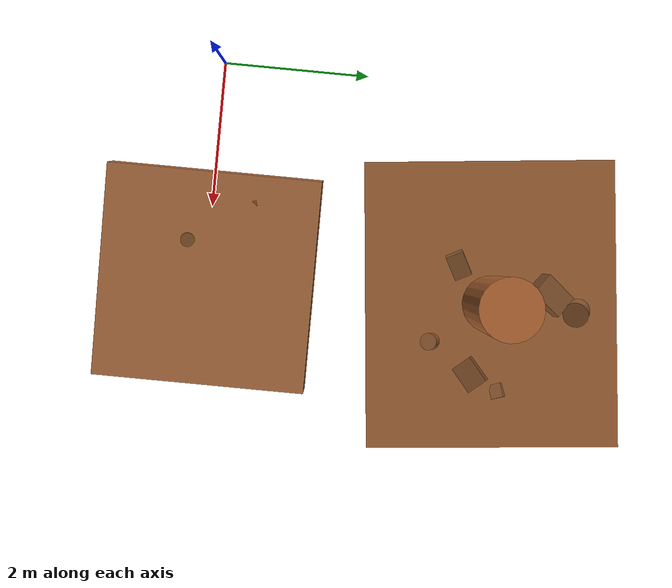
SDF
<sdf version="1.9">
 <world name="mars_test_world">
  <model name="slope_near_spawn">
   <static>true</static>
   <pose>3 0 -0.25 0.0 0.10 0.0</pose>
   <link name="link">
    <collision name="col">
     <geometry><box><size>3.0 3.0 0.5</size></box></geometry>
     <surface>
      <friction><ode><mu>1.0</mu><mu2>0.8</mu2></ode></friction>
      <contact><ode><kp>1e6</kp><kd>100</kd><max_vel>0.1</max_vel><min_depth>0.002</min_depth></ode></contact>
     </surface>
    </collision>
    <visual name="vis">
     <geometry><box><size>3.0 3.0 0.5</size></box></geometry>
     <material><ambient>0.63 0.39 0.23 1</ambient><diffuse>0.69 0.43 0.25 1</diffuse></material>
    </visual>
   </link>
  </model>
  <model name="rockfield_base">
   <static>true</static>
   <pose>3 4 -0.08 0.04 -0.03 0.1</pose>
   <link name="link">
    <collision name="col">
     <geometry><box><size>4.0 3.5 0.2</size></box></geometry>
     <surface>
      <friction><ode><mu>0.9</mu><mu2>0.7</mu2></ode></friction>
      <contact><ode><kp>1e6</kp><kd>100</kd><max_vel>0.1</max_vel><min_depth>0.002</min_depth></ode></contact>
     </surface>
    </collision>
    <visual name="vis">
     <geometry><box><size>4.0 3.5 0.2</size></box></geometry>
     <material><ambient>0.55 0.33 0.18 1</ambient><diffuse>0.60 0.37 0.20 1</diffuse></material>
    </visual>
   </link>
  </model>
  <model name="rf_rock_1">
   <static>true</static>
   <pose>2.5 3.5 0.08 0.1 0.2 0.5</pose>
   <link name="link">
    <collision name="col">
     <geometry><box><size>0.35 0.25 0.18</size></box></geometry>
     <surface>
      <friction><ode><mu>0.9</mu><mu2>0.7</mu2></ode></friction>
      <contact><ode><kp>1e6</kp><kd>100</kd><max_vel>0.1</max_vel><min_depth>0.002</min_depth></ode></contact>
     </surface>
    </collision>
    <visual name="vis">
     <geometry><box><size>0.35 0.25 0.18</size></box></geometry>
     <material><ambient>0.48 0.30 0.15 1</ambient><diffuse>0.52 0.33 0.17 1</diffuse></material>
    </visual>
   </link>
  </model>
  <model name="rf_rock_2">
   <static>true</static>
   <pose>3.2 4.5 0.06 -0.15 0.3 -0.2</pose>
   <link name="link">
    <collision name="col">
     <geometry><cylinder><radius>0.15</radius><length>0.20</length></cylinder></geometry>
     <surface>
      <friction><ode><mu>0.9</mu><mu2>0.7</mu2></ode></friction>
      <contact><ode><kp>1e6</kp><kd>100</kd><max_vel>0.1</max_vel><min_depth>0.002</min_depth></ode></contact>
     </surface>
    </collision>
    <visual name="vis">
     <geometry><cylinder><radius>0.15</radius><length>0.20</length></cylinder></geometry>
     <material><ambient>0.50 0.31 0.16 1</ambient><diffuse>0.55 0.34 0.18 1</diffuse></material>
    </visual>
   </link>
  </model>
  <model name="rf_rock_3">
   <static>true</static>
   <pose>4.0 3.8 0.10 0.2 -0.1 0.7</pose>
   <link name="link">
    <collision name="col">
     <geometry><box><size>0.40 0.30 0.22</size></box></geometry>
     <surface>
      <friction><ode><mu>0.9</mu><mu2>0.7</mu2></ode></friction>
      <contact><ode><kp>1e6</kp><kd>100</kd><max_vel>0.1</max_vel><min_depth>0.002</min_depth></ode></contact>
     </surface>
    </collision>
    <visual name="vis">
     <geometry><box><size>0.40 0.30 0.22</size></box></geometry>
     <material><ambient>0.44 0.27 0.14 1</ambient><diffuse>0.49 0.30 0.16 1</diffuse></material>
    </visual>
   </link>
  </model>
  <model name="rf_rock_4">
   <static>true</static>
   <pose>3.6 3.2 0.05 0.3 0.15 -0.4</pose>
   <link name="link">
    <collision name="col">
     <geometry><cylinder><radius>0.12</radius><length>0.15</length></cylinder></geometry>
     <surface>
      <friction><ode><mu>0.9</mu><mu2>0.7</mu2></ode></friction>
      <contact><ode><kp>1e6</kp><kd>100</kd><max_vel>0.1</max_vel><min_depth>0.002</min_depth></ode></contact>
     </surface>
    </collision>
    <visual name="vis">
     <geometry><cylinder><radius>0.12</radius><length>0.15</length></cylinder></geometry>
     <material><ambient>0.52 0.32 0.17 1</ambient><diffuse>0.57 0.35 0.19 1</diffuse></material>
    </visual>
   </link>
  </model>
  <model name="rf_rock_5">
   <static>true</static>
   <pose>2.8 4.8 0.12 -0.2 0.25 0.9</pose>
   <link name="link">
    <collision name="col">
     <geometry><box><size>0.50 0.35 0.28</size></box></geometry>
     <surface>
      <friction><ode><mu>0.9</mu><mu2>0.7</mu2></ode></friction>
      <contact><ode><kp>1e6</kp><kd>100</kd><max_vel>0.1</max_vel><min_depth>0.002</min_depth></ode></contact>
     </surface>
    </collision>
    <visual name="vis">
     <geometry><box><size>0.50 0.35 0.28</size></box></geometry>
     <material><ambient>0.46 0.28 0.14 1</ambient><diffuse>0.51 0.32 0.17 1</diffuse></material>
    </visual>
   </link>
  </model>
  <model name="rf_rock_6">
   <static>true</static>
   <pose>4.2 4.2 0.04 0.4 -0.2 0.3</pose>
   <link name="link">
    <collision name="col">
     <geometry><box><size>0.20 0.18 0.12</size></box></geometry>
     <surface>
      <friction><ode><mu>0.9</mu><mu2>0.7</mu2></ode></friction>
      <contact><ode><kp>1e6</kp><kd>100</kd><max_vel>0.1</max_vel><min_depth>0.002</min_depth></ode></contact>
     </surface>
    </collision>
    <visual name="vis">
     <geometry><box><size>0.20 0.18 0.12</size></box></geometry>
     <material><ambient>0.53 0.33 0.18 1</ambient><diffuse>0.58 0.36 0.20 1</diffuse></material>
    </visual>
   </link>
  </model>
  <model name="rf_rock_7">
   <static>true</static>
   <pose>3.0 5.2 0.07 0.0 0.4 -0.6</pose>
   <link name="link">
    <collision name="col">
     <geometry><cylinder><radius>0.18</radius><length>0.25</length></cylinder></geometry>
     <surface>
      <friction><ode><mu>0.9</mu><mu2>0.7</mu2></ode></friction>
      <contact><ode><kp>1e6</kp><kd>100</kd><max_vel>0.1</max_vel><min_depth>0.002</min_depth></ode></contact>
     </surface>
    </collision>
    <visual name="vis">
     <geometry><cylinder><radius>0.18</radius><length>0.25</length></cylinder></geometry>
     <material><ambient>0.47 0.29 0.15 1</ambient><diffuse>0.52 0.32 0.17 1</diffuse></material>
    </visual>
   </link>
  </model>
  <model name="climb_rock_1">
   <static>true</static>
   <pose>2.0 0.5 0.04 0.1 0.15 0.3</pose>
   <link name="link">
    <collision name="col">
     <geometry><box><size>0.20 0.30 0.10</size></box></geometry>
     <surface>
      <friction><ode><mu>1.0</mu><mu2>0.8</mu2></ode></friction>
      <contact><ode><kp>1e6</kp><kd>100</kd><max_vel>0.1</max_vel><min_depth>0.002</min_depth></ode></contact>
     </surface>
    </collision>
    <visual name="vis">
     <geometry><box><size>0.20 0.30 0.10</size></box></geometry>
     <material><ambient>0.50 0.31 0.16 1</ambient><diffuse>0.55 0.34 0.18 1</diffuse></material>
    </visual>
   </link>
  </model>
  <model name="climb_rock_2">
   <static>true</static>
   <pose>2.5 -0.3 0.03 -0.2 0.1 -0.5</pose>
   <link name="link">
    <collision name="col">
     <geometry><cylinder><radius>0.10</radius><length>0.08</length></cylinder></geometry>
     <surface>
      <friction><ode><mu>1.0</mu><mu2>0.8</mu2></ode></friction>
      <contact><ode><kp>1e6</kp><kd>100</kd><max_vel>0.1</max_vel><min_depth>0.002</min_depth></ode></contact>
     </surface>
    </collision>
    <visual name="vis">
     <geometry><cylinder><radius>0.10</radius><length>0.08</length></cylinder></geometry>
     <material><ambient>0.48 0.30 0.15 1</ambient><diffuse>0.53 0.33 0.17 1</diffuse></material>
    </visual>
   </link>
  </model>
  <model name="slam_pillar_1">
   <static>true</static>
   <pose>3 4 1.5 0 0 0</pose>
   <link name="link">
    <collision name="col">
     <geometry><cylinder><radius>0.4</radius><length>3.0</length></cylinder></geometry>
    </collision>
    <visual name="vis">
     <geometry><cylinder><radius>0.4</radius><length>3.0</length></cylinder></geometry>
     <material><ambient>0.5 0.3 0.1 1</ambient><diffuse>0.7 0.4 0.2 1</diffuse></material>
    </visual>
   </link>
  </model>
 </world>
</sdf>
